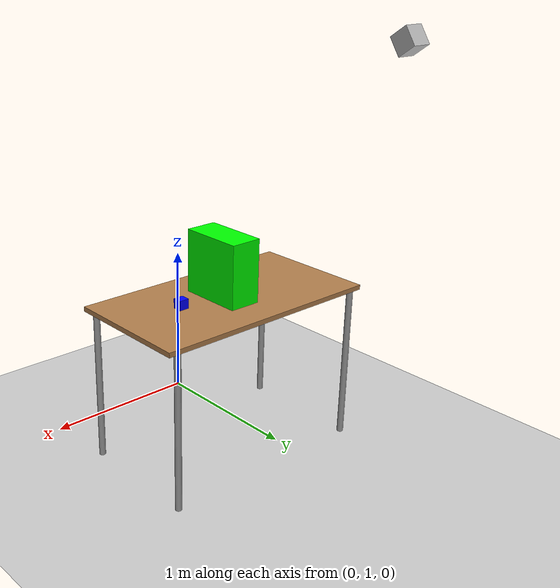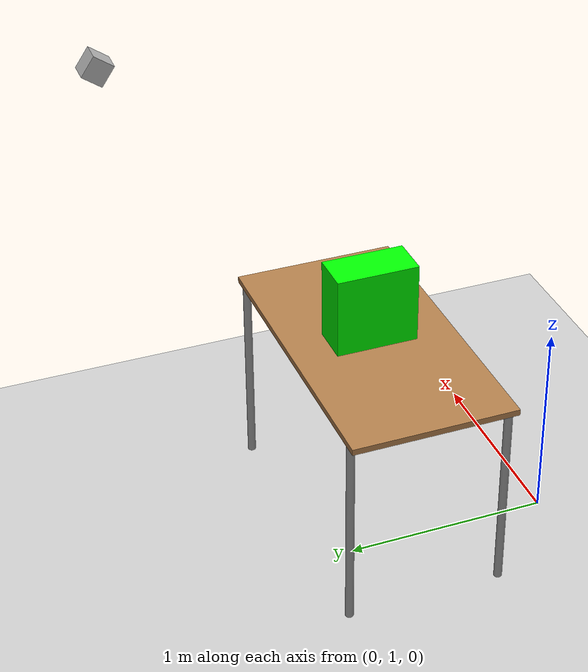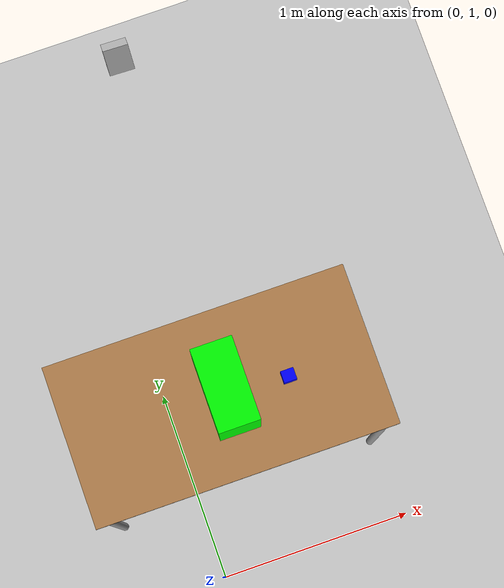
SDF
<sdf version="1.9">
 <world name="default">
  <physics name="1ms" type="ignored">
   <max_step_size>0.001</max_step_size>
   <real_time_factor>1</real_time_factor>
   <real_time_update_rate>1000</real_time_update_rate>
  </physics>
  <plugin name="gz::sim::systems::Physics" filename="gz-sim-physics-system"/>
  <plugin name="gz::sim::systems::UserCommands" filename="gz-sim-user-commands-system"/>
  <plugin name="gz::sim::systems::Sensors" filename="gz-sim-sensors-system">
   <render_engine>ogre2</render_engine>
  </plugin>
  <plugin name="gz::sim::systems::SceneBroadcaster" filename="gz-sim-scene-broadcaster-system"/>
  <plugin name="gz::sim::systems::Contact" filename="gz-sim-contact-system"/>
  <gravity>0 0 -9.8</gravity>
  <magnetic_field>6e-06 2.3e-05 -4.2e-05</magnetic_field>
  <atmosphere type="adiabatic"/>
  <scene><ambient>0.4 0.4 0.4 1</ambient><background>0.7 0.7 0.7 1</background><shadows>true</shadows></scene>
  <model name="ground_plane">
   <static>true</static>
   <link name="link">
    <collision name="collision">
     <geometry><plane><normal>0 0 1</normal><size>100 100</size></plane></geometry>
    </collision>
    <visual name="visual">
     <geometry><plane><normal>0 0 1</normal><size>100 100</size></plane></geometry>
     <material>
      <ambient>0.8 0.8 0.8 1</ambient>
      <diffuse>0.8 0.8 0.8 1</diffuse>
      <specular>0.8 0.8 0.8 1</specular>
     </material>
    </visual>
    <inertial>
     <mass>1</mass>
     <inertia><ixx>1</ixx><ixy>0</ixy><ixz>0</ixz><iyy>1</iyy><iyz>0</iyz><izz>1</izz></inertia>
    </inertial>
   </link>
  </model>
  <model name="table">
   <static>true</static>
   <link name="link">
    <collision name="surface">
     <pose>0 0 1 0 -0 0</pose>
     <geometry><box><size>1.5 0.8 0.03</size></box></geometry>
     <surface><friction><ode><mu>0.59999999999999998</mu><mu2>0.59999999999999998</mu2></ode></friction></surface>
    </collision>
    <visual name="visual1">
     <pose>0 0 1 0 -0 0</pose>
     <geometry><box><size>1.5 0.8 0.03</size></box></geometry>
     <material>
      <script><uri>file://media/materials/scripts/gazebo.material</uri><name>Gazebo/Wood</name></script>
     </material>
    </visual>
    <collision name="front_left_leg">
     <pose>0.68 0.38 0.5 0 -0 0</pose>
     <geometry><cylinder><radius>0.02</radius><length>1</length></cylinder></geometry>
    </collision>
    <visual name="front_left_leg">
     <pose>0.68 0.38 0.5 0 -0 0</pose>
     <geometry><cylinder><radius>0.02</radius><length>1</length></cylinder></geometry>
     <material>
      <script><uri>file://media/materials/scripts/gazebo.material</uri><name>Gazebo/Grey</name></script>
     </material>
    </visual>
    <collision name="front_right_leg">
     <pose>0.68 -0.38 0.5 0 -0 0</pose>
     <geometry><cylinder><radius>0.02</radius><length>1</length></cylinder></geometry>
    </collision>
    <visual name="front_right_leg">
     <pose>0.68 -0.38 0.5 0 -0 0</pose>
     <geometry><cylinder><radius>0.02</radius><length>1</length></cylinder></geometry>
     <material>
      <script><uri>file://media/materials/scripts/gazebo.material</uri><name>Gazebo/Grey</name></script>
     </material>
    </visual>
    <collision name="back_right_leg">
     <pose>-0.68 -0.38 0.5 0 -0 0</pose>
     <geometry><cylinder><radius>0.02</radius><length>1</length></cylinder></geometry>
    </collision>
    <visual name="back_right_leg">
     <pose>-0.68 -0.38 0.5 0 -0 0</pose>
     <geometry><cylinder><radius>0.02</radius><length>1</length></cylinder></geometry>
     <material>
      <script><uri>file://media/materials/scripts/gazebo.material</uri><name>Gazebo/Grey</name></script>
     </material>
    </visual>
    <collision name="back_left_leg">
     <pose>-0.68 0.38 0.5 0 -0 0</pose>
     <geometry><cylinder><radius>0.02</radius><length>1</length></cylinder></geometry>
    </collision>
    <visual name="back_left_leg">
     <pose>-0.68 0.38 0.5 0 -0 0</pose>
     <geometry><cylinder><radius>0.02</radius><length>1</length></cylinder></geometry>
     <material>
      <script><uri>file://media/materials/scripts/gazebo.material</uri><name>Gazebo/Grey</name></script>
     </material>
    </visual>
    <inertial>
     <mass>1</mass>
     <inertia><ixx>1</ixx><ixy>0</ixy><ixz>0</ixz><iyy>1</iyy><iyz>0</iyz><izz>1</izz></inertia>
    </inertial>
   </link>
   <pose>0.270759 1.80105 0 0 -0 0</pose>
  </model>
  <model name="unit_box_blue">
   <link name="link">
    <inertial>
     <mass>0.10000000000000001</mass>
     <inertia>
      <ixx>5.7630000000000002e-05</ixx>
      <ixy>0</ixy>
      <ixz>0</ixz>
      <iyy>6.3310000000000002e-05</iyy>
      <iyz>0</iyz>
      <izz>6.1190000000000002e-05</izz>
     </inertia>
    </inertial>
    <visual name="visual">
     <geometry><box><size>0.063346 0.05771 0.059872</size></box></geometry>
     <material>
      <ambient>0 0 1 1</ambient>
      <diffuse>0 0 1 1</diffuse>
      <specular>0.01 0.01 0.01 1</specular>
      <emissive>0 0 0 1</emissive>
     </material>
    </visual>
    <collision name="collision"><geometry><box><size>0.063346 0.05771 0.059872</size></box></geometry></collision>
   </link>
   <static>false</static>
   <pose>0.6 1.78 1.0449 0 -0 0</pose>
  </model>
  <model name="unit_box_2">
   <link name="link">
    <inertial>
     <mass>1</mass>
     <inertia>
      <ixx>0.16666700000000001</ixx>
      <ixy>0</ixy>
      <ixz>0</ixz>
      <iyy>0.16666700000000001</iyy>
      <iyz>0</iyz>
      <izz>0.16666700000000001</izz>
     </inertia>
    </inertial>
    <visual name="visual">
     <geometry><box><size>0.2 0.4 0.4</size></box></geometry>
     <material>
      <ambient>0 1 0 1</ambient>
      <diffuse>0 1 0 1</diffuse>
      <specular>0.01 0.01 0.01 1</specular>
      <emissive>0 0 0 1</emissive>
     </material>
    </visual>
    <collision name="collision">
     <geometry><box><size>0.197218 0.337057 0.440816</size></box></geometry>
    </collision>
   </link>
   <static>false</static>
   <pose>0.3 1.8 1.21 0 0 -0.0004</pose>
  </model>
  <model name="rgbd_camera">
   <pose>0.3 3 2.6 0 0.6 4.68159</pose>
   <static>true</static>
   <link name="link">
    <collision name="collision"><geometry><box><size>0.1 0.1 0.1</size></box></geometry></collision>
    <visual name="visual"><geometry><box><size>0.1 0.1 0.1</size></box></geometry></visual>
    <sensor name="rgbd_camera" type="rgbd_camera">
     <camera>
      <horizontal_fov>1.047</horizontal_fov>
      <image><width>320</width><height>240</height></image>
      <clip><near>0.1</near><far>100</far></clip>
     </camera>
     <always_on>1</always_on>
     <update_rate>30</update_rate>
     <visualize>true</visualize>
     <topic>rgbd_camera</topic>
    </sensor>
   </link>
  </model>
  <light name="sun" type="directional">
   <pose>0 0 10 0 -0 0</pose>
   <intensity>1</intensity>
   <direction>-0.5 0.1 -0.9</direction>
   <diffuse>0.8 0.8 0.8 1</diffuse>
   <specular>0.2 0.2 0.2 1</specular>
   <attenuation>
    <range>1000</range>
    <linear>0.01</linear>
    <constant>0.90000000000000002</constant>
    <quadratic>0.001</quadratic>
   </attenuation>
   <spot><inner_angle>0</inner_angle><outer_angle>0</outer_angle><falloff>0</falloff></spot>
  </light>
 </world>
</sdf>
